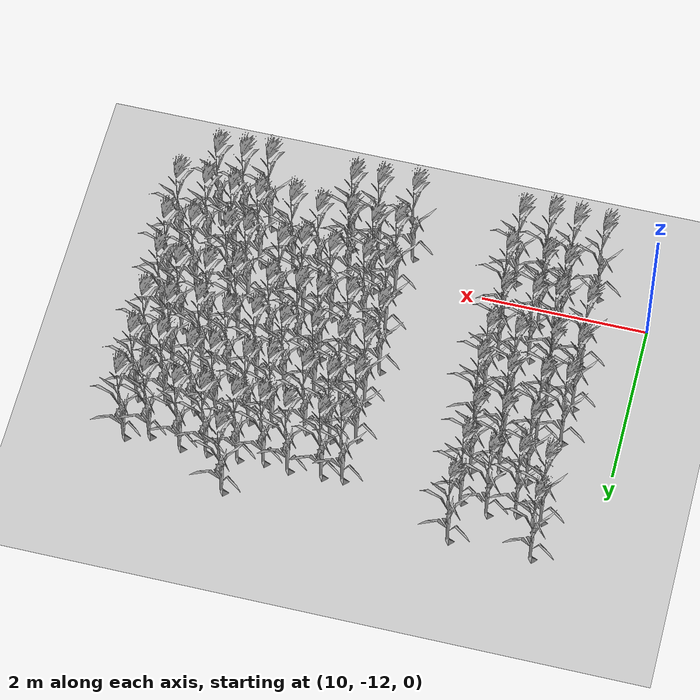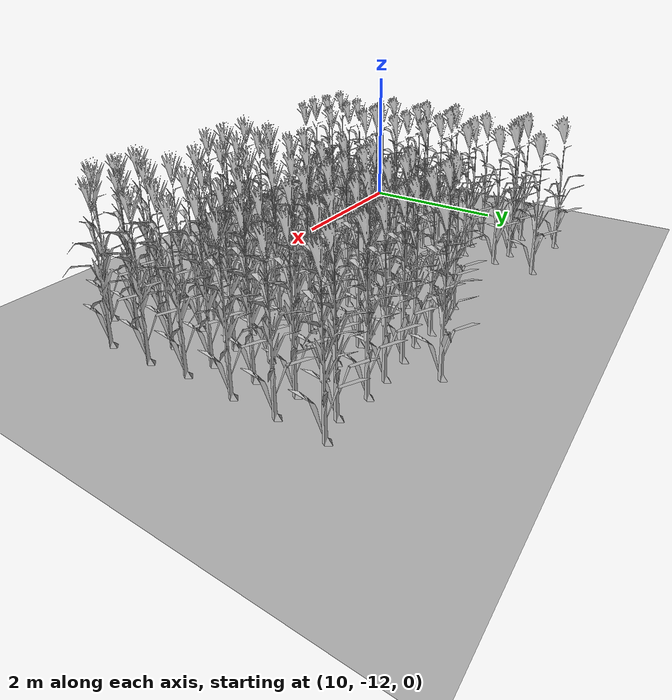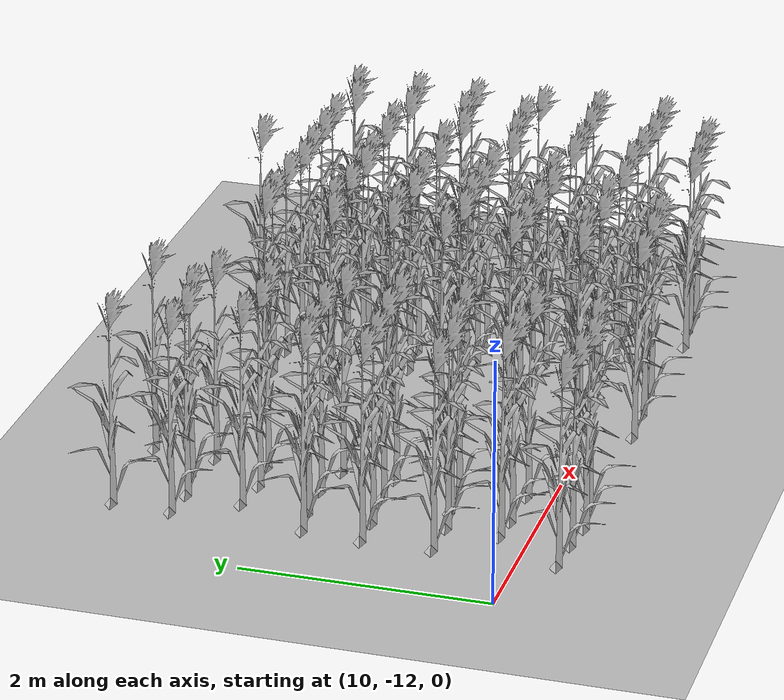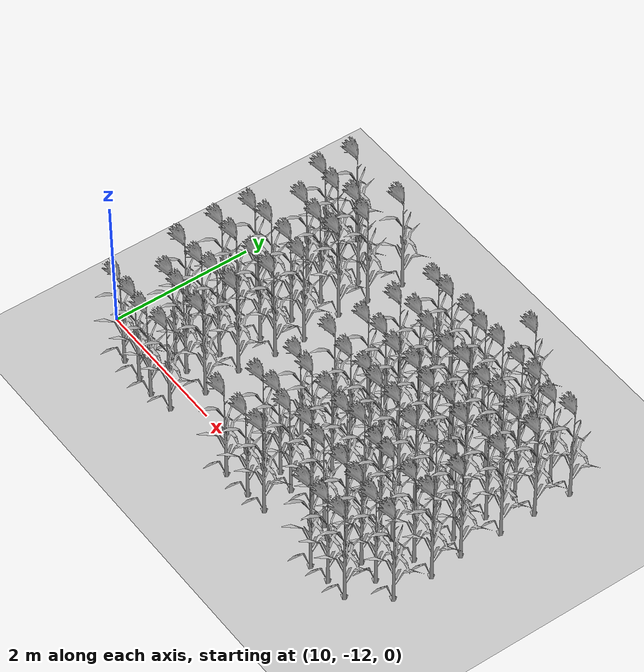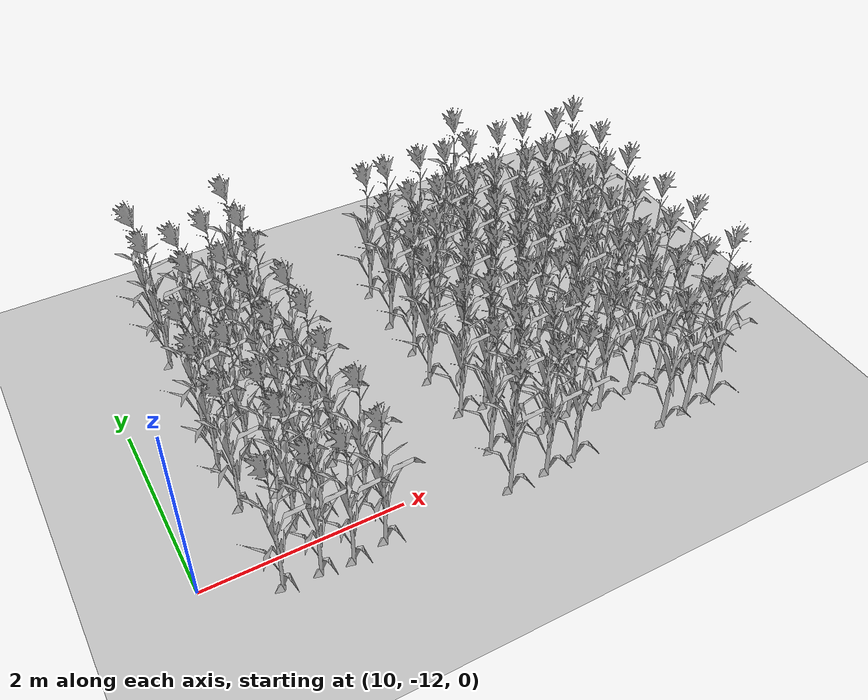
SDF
<sdf version="1.7">
 <world name="farmland_world">
  <model name="ground_plane">
   <static>1</static>
   <link name="link">
    <collision name="collision">
     <geometry><plane><normal>0 0 1</normal><size>40.0 40.0</size></plane></geometry>
     <surface><friction><ode><mu>100</mu><mu2>50</mu2></ode></friction></surface>
    </collision>
    <visual name="visual">
     <cast_shadows>0</cast_shadows>
     <geometry><plane><normal>0 0 1</normal><size>40.0 40.0</size></plane></geometry>
     <material>
      <script><uri>file://media/materials/scripts/gazebo.material</uri><name>Gazebo/Grey</name></script>
     </material>
    </visual>
   </link>
  </model>
  <model name="tree_3_1276">
   <static>1</static>
   <link name="link">
    <collision name="collision">
     <geometry><mesh><uri>model://Corn_low_poly/corn.obj</uri><scale>1 1 1</scale></mesh></geometry>
     <surface><friction><ode><mu>100</mu><mu2>50</mu2></ode></friction></surface>
    </collision>
    <visual name="visual">
     <geometry><mesh><uri>model://Corn_low_poly/corn.obj</uri><scale>1 1 1</scale></mesh></geometry>
    </visual>
   </link>
   <pose>10.712590287546128 -8.721554677420578 0 0 0 0</pose>
  </model>
  <model name="tree_3_1277">
   <static>1</static>
   <link name="link">
    <collision name="collision">
     <geometry><mesh><uri>model://Corn_low_poly/corn.obj</uri><scale>1 1 1</scale></mesh></geometry>
     <surface><friction><ode><mu>100</mu><mu2>50</mu2></ode></friction></surface>
    </collision>
    <visual name="visual">
     <geometry><mesh><uri>model://Corn_low_poly/corn.obj</uri><scale>1 1 1</scale></mesh></geometry>
    </visual>
   </link>
   <pose>10.697137242937291 -9.208723765863569 0 0 0 0</pose>
  </model>
  <model name="tree_3_1279">
   <static>1</static>
   <link name="link">
    <collision name="collision">
     <geometry><mesh><uri>model://Corn_low_poly/corn.obj</uri><scale>1 1 1</scale></mesh></geometry>
     <surface><friction><ode><mu>100</mu><mu2>50</mu2></ode></friction></surface>
    </collision>
    <visual name="visual">
     <geometry><mesh><uri>model://Corn_low_poly/corn.obj</uri><scale>1 1 1</scale></mesh></geometry>
    </visual>
   </link>
   <pose>10.68900913346405 -10.279654369193016 0 0 0 0</pose>
  </model>
  <model name="tree_3_1280">
   <static>1</static>
   <link name="link">
    <collision name="collision">
     <geometry><mesh><uri>model://Corn_low_poly/corn.obj</uri><scale>1 1 1</scale></mesh></geometry>
     <surface><friction><ode><mu>100</mu><mu2>50</mu2></ode></friction></surface>
    </collision>
    <visual name="visual">
     <geometry><mesh><uri>model://Corn_low_poly/corn.obj</uri><scale>1 1 1</scale></mesh></geometry>
    </visual>
   </link>
   <pose>10.65553380559151 -10.760929494632325 0 0 0 0</pose>
  </model>
  <model name="tree_3_1281">
   <static>1</static>
   <link name="link">
    <collision name="collision">
     <geometry><mesh><uri>model://Corn_low_poly/corn.obj</uri><scale>1 1 1</scale></mesh></geometry>
     <surface><friction><ode><mu>100</mu><mu2>50</mu2></ode></friction></surface>
    </collision>
    <visual name="visual">
     <geometry><mesh><uri>model://Corn_low_poly/corn.obj</uri><scale>1 1 1</scale></mesh></geometry>
    </visual>
   </link>
   <pose>10.666757583871274 -11.323173614422497 0 0 0 0</pose>
  </model>
  <model name="tree_3_1283">
   <static>1</static>
   <link name="link">
    <collision name="collision">
     <geometry><mesh><uri>model://Corn_low_poly/corn.obj</uri><scale>1 1 1</scale></mesh></geometry>
     <surface><friction><ode><mu>100</mu><mu2>50</mu2></ode></friction></surface>
    </collision>
    <visual name="visual">
     <geometry><mesh><uri>model://Corn_low_poly/corn.obj</uri><scale>1 1 1</scale></mesh></geometry>
    </visual>
   </link>
   <pose>10.683725073658634 -12.299409655871067 0 0 0 0</pose>
  </model>
  <model name="tree_3_1303">
   <static>1</static>
   <link name="link">
    <collision name="collision">
     <geometry><mesh><uri>model://Corn_low_poly/corn.obj</uri><scale>1 1 1</scale></mesh></geometry>
     <surface><friction><ode><mu>100</mu><mu2>50</mu2></ode></friction></surface>
    </collision>
    <visual name="visual">
     <geometry><mesh><uri>model://Corn_low_poly/corn.obj</uri><scale>1 1 1</scale></mesh></geometry>
    </visual>
   </link>
   <pose>10.999890956080558 -9.232882645473651 0 0 0 0</pose>
  </model>
  <model name="tree_3_1304">
   <static>1</static>
   <link name="link">
    <collision name="collision">
     <geometry><mesh><uri>model://Corn_low_poly/corn.obj</uri><scale>1 1 1</scale></mesh></geometry>
     <surface><friction><ode><mu>100</mu><mu2>50</mu2></ode></friction></surface>
    </collision>
    <visual name="visual">
     <geometry><mesh><uri>model://Corn_low_poly/corn.obj</uri><scale>1 1 1</scale></mesh></geometry>
    </visual>
   </link>
   <pose>10.968580055157117 -9.692099359160068 0 0 0 0</pose>
  </model>
  <model name="tree_3_1305">
   <static>1</static>
   <link name="link">
    <collision name="collision">
     <geometry><mesh><uri>model://Corn_low_poly/corn.obj</uri><scale>1 1 1</scale></mesh></geometry>
     <surface><friction><ode><mu>100</mu><mu2>50</mu2></ode></friction></surface>
    </collision>
    <visual name="visual">
     <geometry><mesh><uri>model://Corn_low_poly/corn.obj</uri><scale>1 1 1</scale></mesh></geometry>
    </visual>
   </link>
   <pose>10.972463463315165 -10.2334536938371 0 0 0 0</pose>
  </model>
  <model name="tree_3_1306">
   <static>1</static>
   <link name="link">
    <collision name="collision">
     <geometry><mesh><uri>model://Corn_low_poly/corn.obj</uri><scale>1 1 1</scale></mesh></geometry>
     <surface><friction><ode><mu>100</mu><mu2>50</mu2></ode></friction></surface>
    </collision>
    <visual name="visual">
     <geometry><mesh><uri>model://Corn_low_poly/corn.obj</uri><scale>1 1 1</scale></mesh></geometry>
    </visual>
   </link>
   <pose>10.960484214269439 -10.754221765414966 0 0 0 0</pose>
  </model>
  <model name="tree_3_1307">
   <static>1</static>
   <link name="link">
    <collision name="collision">
     <geometry><mesh><uri>model://Corn_low_poly/corn.obj</uri><scale>1 1 1</scale></mesh></geometry>
     <surface><friction><ode><mu>100</mu><mu2>50</mu2></ode></friction></surface>
    </collision>
    <visual name="visual">
     <geometry><mesh><uri>model://Corn_low_poly/corn.obj</uri><scale>1 1 1</scale></mesh></geometry>
    </visual>
   </link>
   <pose>11.03778016681984 -11.329312798935172 0 0 0 0</pose>
  </model>
  <model name="tree_3_1308">
   <static>1</static>
   <link name="link">
    <collision name="collision">
     <geometry><mesh><uri>model://Corn_low_poly/corn.obj</uri><scale>1 1 1</scale></mesh></geometry>
     <surface><friction><ode><mu>100</mu><mu2>50</mu2></ode></friction></surface>
    </collision>
    <visual name="visual">
     <geometry><mesh><uri>model://Corn_low_poly/corn.obj</uri><scale>1 1 1</scale></mesh></geometry>
    </visual>
   </link>
   <pose>11.021519494524423 -11.758095381481226 0 0 0 0</pose>
  </model>
  <model name="tree_3_1309">
   <static>1</static>
   <link name="link">
    <collision name="collision">
     <geometry><mesh><uri>model://Corn_low_poly/corn.obj</uri><scale>1 1 1</scale></mesh></geometry>
     <surface><friction><ode><mu>100</mu><mu2>50</mu2></ode></friction></surface>
    </collision>
    <visual name="visual">
     <geometry><mesh><uri>model://Corn_low_poly/corn.obj</uri><scale>1 1 1</scale></mesh></geometry>
    </visual>
   </link>
   <pose>11.034552466023404 -12.315293473117126 0 0 0 0</pose>
  </model>
  <model name="tree_3_1329">
   <static>1</static>
   <link name="link">
    <collision name="collision">
     <geometry><mesh><uri>model://Corn_low_poly/corn.obj</uri><scale>1 1 1</scale></mesh></geometry>
     <surface><friction><ode><mu>100</mu><mu2>50</mu2></ode></friction></surface>
    </collision>
    <visual name="visual">
     <geometry><mesh><uri>model://Corn_low_poly/corn.obj</uri><scale>1 1 1</scale></mesh></geometry>
    </visual>
   </link>
   <pose>11.327159757321947 -9.155533036479083 0 0 0 0</pose>
  </model>
  <model name="tree_3_1330">
   <static>1</static>
   <link name="link">
    <collision name="collision">
     <geometry><mesh><uri>model://Corn_low_poly/corn.obj</uri><scale>1 1 1</scale></mesh></geometry>
     <surface><friction><ode><mu>100</mu><mu2>50</mu2></ode></friction></surface>
    </collision>
    <visual name="visual">
     <geometry><mesh><uri>model://Corn_low_poly/corn.obj</uri><scale>1 1 1</scale></mesh></geometry>
    </visual>
   </link>
   <pose>11.306016690328173 -9.726875922193582 0 0 0 0</pose>
  </model>
  <model name="tree_3_1331">
   <static>1</static>
   <link name="link">
    <collision name="collision">
     <geometry><mesh><uri>model://Corn_low_poly/corn.obj</uri><scale>1 1 1</scale></mesh></geometry>
     <surface><friction><ode><mu>100</mu><mu2>50</mu2></ode></friction></surface>
    </collision>
    <visual name="visual">
     <geometry><mesh><uri>model://Corn_low_poly/corn.obj</uri><scale>1 1 1</scale></mesh></geometry>
    </visual>
   </link>
   <pose>11.352444781736523 -10.214068037391959 0 0 0 0</pose>
  </model>
  <model name="tree_3_1332">
   <static>1</static>
   <link name="link">
    <collision name="collision">
     <geometry><mesh><uri>model://Corn_low_poly/corn.obj</uri><scale>1 1 1</scale></mesh></geometry>
     <surface><friction><ode><mu>100</mu><mu2>50</mu2></ode></friction></surface>
    </collision>
    <visual name="visual">
     <geometry><mesh><uri>model://Corn_low_poly/corn.obj</uri><scale>1 1 1</scale></mesh></geometry>
    </visual>
   </link>
   <pose>11.375541025906942 -10.714460345486712 0 0 0 0</pose>
  </model>
  <model name="tree_3_1333">
   <static>1</static>
   <link name="link">
    <collision name="collision">
     <geometry><mesh><uri>model://Corn_low_poly/corn.obj</uri><scale>1 1 1</scale></mesh></geometry>
     <surface><friction><ode><mu>100</mu><mu2>50</mu2></ode></friction></surface>
    </collision>
    <visual name="visual">
     <geometry><mesh><uri>model://Corn_low_poly/corn.obj</uri><scale>1 1 1</scale></mesh></geometry>
    </visual>
   </link>
   <pose>11.295530359236745 -11.281155596338511 0 0 0 0</pose>
  </model>
  <model name="tree_3_1334">
   <static>1</static>
   <link name="link">
    <collision name="collision">
     <geometry><mesh><uri>model://Corn_low_poly/corn.obj</uri><scale>1 1 1</scale></mesh></geometry>
     <surface><friction><ode><mu>100</mu><mu2>50</mu2></ode></friction></surface>
    </collision>
    <visual name="visual">
     <geometry><mesh><uri>model://Corn_low_poly/corn.obj</uri><scale>1 1 1</scale></mesh></geometry>
    </visual>
   </link>
   <pose>11.284010358071075 -11.773554500819937 0 0 0 0</pose>
  </model>
  <model name="tree_3_1335">
   <static>1</static>
   <link name="link">
    <collision name="collision">
     <geometry><mesh><uri>model://Corn_low_poly/corn.obj</uri><scale>1 1 1</scale></mesh></geometry>
     <surface><friction><ode><mu>100</mu><mu2>50</mu2></ode></friction></surface>
    </collision>
    <visual name="visual">
     <geometry><mesh><uri>model://Corn_low_poly/corn.obj</uri><scale>1 1 1</scale></mesh></geometry>
    </visual>
   </link>
   <pose>11.333836860167402 -12.344751836967225 0 0 0 0</pose>
  </model>
  <model name="tree_3_1354">
   <static>1</static>
   <link name="link">
    <collision name="collision">
     <geometry><mesh><uri>model://Corn_low_poly/corn.obj</uri><scale>1 1 1</scale></mesh></geometry>
     <surface><friction><ode><mu>100</mu><mu2>50</mu2></ode></friction></surface>
    </collision>
    <visual name="visual">
     <geometry><mesh><uri>model://Corn_low_poly/corn.obj</uri><scale>1 1 1</scale></mesh></geometry>
    </visual>
   </link>
   <pose>11.68559854655214 -8.723766910554925 0 0 0 0</pose>
  </model>
  <model name="tree_3_1355">
   <static>1</static>
   <link name="link">
    <collision name="collision">
     <geometry><mesh><uri>model://Corn_low_poly/corn.obj</uri><scale>1 1 1</scale></mesh></geometry>
     <surface><friction><ode><mu>100</mu><mu2>50</mu2></ode></friction></surface>
    </collision>
    <visual name="visual">
     <geometry><mesh><uri>model://Corn_low_poly/corn.obj</uri><scale>1 1 1</scale></mesh></geometry>
    </visual>
   </link>
   <pose>11.651948153793127 -9.247264969704112 0 0 0 0</pose>
  </model>
  <model name="tree_3_1356">
   <static>1</static>
   <link name="link">
    <collision name="collision">
     <geometry><mesh><uri>model://Corn_low_poly/corn.obj</uri><scale>1 1 1</scale></mesh></geometry>
     <surface><friction><ode><mu>100</mu><mu2>50</mu2></ode></friction></surface>
    </collision>
    <visual name="visual">
     <geometry><mesh><uri>model://Corn_low_poly/corn.obj</uri><scale>1 1 1</scale></mesh></geometry>
    </visual>
   </link>
   <pose>11.631078623062175 -9.685410377410898 0 0 0 0</pose>
  </model>
  <model name="tree_3_1357">
   <static>1</static>
   <link name="link">
    <collision name="collision">
     <geometry><mesh><uri>model://Corn_low_poly/corn.obj</uri><scale>1 1 1</scale></mesh></geometry>
     <surface><friction><ode><mu>100</mu><mu2>50</mu2></ode></friction></surface>
    </collision>
    <visual name="visual">
     <geometry><mesh><uri>model://Corn_low_poly/corn.obj</uri><scale>1 1 1</scale></mesh></geometry>
    </visual>
   </link>
   <pose>11.711934252888803 -10.279370815911975 0 0 0 0</pose>
  </model>
  <model name="tree_3_1358">
   <static>1</static>
   <link name="link">
    <collision name="collision">
     <geometry><mesh><uri>model://Corn_low_poly/corn.obj</uri><scale>1 1 1</scale></mesh></geometry>
     <surface><friction><ode><mu>100</mu><mu2>50</mu2></ode></friction></surface>
    </collision>
    <visual name="visual">
     <geometry><mesh><uri>model://Corn_low_poly/corn.obj</uri><scale>1 1 1</scale></mesh></geometry>
    </visual>
   </link>
   <pose>11.703943133647876 -10.718392594703385 0 0 0 0</pose>
  </model>
  <model name="tree_3_1359">
   <static>1</static>
   <link name="link">
    <collision name="collision">
     <geometry><mesh><uri>model://Corn_low_poly/corn.obj</uri><scale>1 1 1</scale></mesh></geometry>
     <surface><friction><ode><mu>100</mu><mu2>50</mu2></ode></friction></surface>
    </collision>
    <visual name="visual">
     <geometry><mesh><uri>model://Corn_low_poly/corn.obj</uri><scale>1 1 1</scale></mesh></geometry>
    </visual>
   </link>
   <pose>11.655709140777311 -11.243517528000766 0 0 0 0</pose>
  </model>
  <model name="tree_3_1360">
   <static>1</static>
   <link name="link">
    <collision name="collision">
     <geometry><mesh><uri>model://Corn_low_poly/corn.obj</uri><scale>1 1 1</scale></mesh></geometry>
     <surface><friction><ode><mu>100</mu><mu2>50</mu2></ode></friction></surface>
    </collision>
    <visual name="visual">
     <geometry><mesh><uri>model://Corn_low_poly/corn.obj</uri><scale>1 1 1</scale></mesh></geometry>
    </visual>
   </link>
   <pose>11.715177458582309 -11.7847555163473 0 0 0 0</pose>
  </model>
  <model name="tree_3_1361">
   <static>1</static>
   <link name="link">
    <collision name="collision">
     <geometry><mesh><uri>model://Corn_low_poly/corn.obj</uri><scale>1 1 1</scale></mesh></geometry>
     <surface><friction><ode><mu>100</mu><mu2>50</mu2></ode></friction></surface>
    </collision>
    <visual name="visual">
     <geometry><mesh><uri>model://Corn_low_poly/corn.obj</uri><scale>1 1 1</scale></mesh></geometry>
    </visual>
   </link>
   <pose>11.674417851053787 -12.286557391233448 0 0 0 0</pose>
  </model>
  <model name="tree_3_1381">
   <static>1</static>
   <link name="link">
    <collision name="collision">
     <geometry><mesh><uri>model://Corn_low_poly/corn.obj</uri><scale>1 1 1</scale></mesh></geometry>
     <surface><friction><ode><mu>100</mu><mu2>50</mu2></ode></friction></surface>
    </collision>
    <visual name="visual">
     <geometry><mesh><uri>model://Corn_low_poly/corn.obj</uri><scale>1 1 1</scale></mesh></geometry>
    </visual>
   </link>
   <pose>13.04460544598058 -9.196783009207037 0 0 0 0</pose>
  </model>
  <model name="tree_3_1382">
   <static>1</static>
   <link name="link">
    <collision name="collision">
     <geometry><mesh><uri>model://Corn_low_poly/corn.obj</uri><scale>1 1 1</scale></mesh></geometry>
     <surface><friction><ode><mu>100</mu><mu2>50</mu2></ode></friction></surface>
    </collision>
    <visual name="visual">
     <geometry><mesh><uri>model://Corn_low_poly/corn.obj</uri><scale>1 1 1</scale></mesh></geometry>
    </visual>
   </link>
   <pose>13.016220259852426 -9.763549217176125 0 0 0 0</pose>
  </model>
  <model name="tree_3_1383">
   <static>1</static>
   <link name="link">
    <collision name="collision">
     <geometry><mesh><uri>model://Corn_low_poly/corn.obj</uri><scale>1 1 1</scale></mesh></geometry>
     <surface><friction><ode><mu>100</mu><mu2>50</mu2></ode></friction></surface>
    </collision>
    <visual name="visual">
     <geometry><mesh><uri>model://Corn_low_poly/corn.obj</uri><scale>1 1 1</scale></mesh></geometry>
    </visual>
   </link>
   <pose>13.036622315786346 -10.258207844460603 0 0 0 0</pose>
  </model>
  <model name="tree_3_1384">
   <static>1</static>
   <link name="link">
    <collision name="collision">
     <geometry><mesh><uri>model://Corn_low_poly/corn.obj</uri><scale>1 1 1</scale></mesh></geometry>
     <surface><friction><ode><mu>100</mu><mu2>50</mu2></ode></friction></surface>
    </collision>
    <visual name="visual">
     <geometry><mesh><uri>model://Corn_low_poly/corn.obj</uri><scale>1 1 1</scale></mesh></geometry>
    </visual>
   </link>
   <pose>12.970077758342432 -10.713155203588432 0 0 0 0</pose>
  </model>
  <model name="tree_3_1385">
   <static>1</static>
   <link name="link">
    <collision name="collision">
     <geometry><mesh><uri>model://Corn_low_poly/corn.obj</uri><scale>1 1 1</scale></mesh></geometry>
     <surface><friction><ode><mu>100</mu><mu2>50</mu2></ode></friction></surface>
    </collision>
    <visual name="visual">
     <geometry><mesh><uri>model://Corn_low_poly/corn.obj</uri><scale>1 1 1</scale></mesh></geometry>
    </visual>
   </link>
   <pose>13.027903516461809 -11.265421480245923 0 0 0 0</pose>
  </model>
  <model name="tree_3_1386">
   <static>1</static>
   <link name="link">
    <collision name="collision">
     <geometry><mesh><uri>model://Corn_low_poly/corn.obj</uri><scale>1 1 1</scale></mesh></geometry>
     <surface><friction><ode><mu>100</mu><mu2>50</mu2></ode></friction></surface>
    </collision>
    <visual name="visual">
     <geometry><mesh><uri>model://Corn_low_poly/corn.obj</uri><scale>1 1 1</scale></mesh></geometry>
    </visual>
   </link>
   <pose>13.041020701210245 -11.826049121173435 0 0 0 0</pose>
  </model>
  <model name="tree_3_1387">
   <static>1</static>
   <link name="link">
    <collision name="collision">
     <geometry><mesh><uri>model://Corn_low_poly/corn.obj</uri><scale>1 1 1</scale></mesh></geometry>
     <surface><friction><ode><mu>100</mu><mu2>50</mu2></ode></friction></surface>
    </collision>
    <visual name="visual">
     <geometry><mesh><uri>model://Corn_low_poly/corn.obj</uri><scale>1 1 1</scale></mesh></geometry>
    </visual>
   </link>
   <pose>12.950458142697228 -12.32986829313126 0 0 0 0</pose>
  </model>
  <model name="tree_3_1407">
   <static>1</static>
   <link name="link">
    <collision name="collision">
     <geometry><mesh><uri>model://Corn_low_poly/corn.obj</uri><scale>1 1 1</scale></mesh></geometry>
     <surface><friction><ode><mu>100</mu><mu2>50</mu2></ode></friction></surface>
    </collision>
    <visual name="visual">
     <geometry><mesh><uri>model://Corn_low_poly/corn.obj</uri><scale>1 1 1</scale></mesh></geometry>
    </visual>
   </link>
   <pose>13.292341979542202 -9.182412231958166 0 0 0 0</pose>
  </model>
  <model name="tree_3_1408">
   <static>1</static>
   <link name="link">
    <collision name="collision">
     <geometry><mesh><uri>model://Corn_low_poly/corn.obj</uri><scale>1 1 1</scale></mesh></geometry>
     <surface><friction><ode><mu>100</mu><mu2>50</mu2></ode></friction></surface>
    </collision>
    <visual name="visual">
     <geometry><mesh><uri>model://Corn_low_poly/corn.obj</uri><scale>1 1 1</scale></mesh></geometry>
    </visual>
   </link>
   <pose>13.31378360115225 -9.678862156522218 0 0 0 0</pose>
  </model>
  <model name="tree_3_1409">
   <static>1</static>
   <link name="link">
    <collision name="collision">
     <geometry><mesh><uri>model://Corn_low_poly/corn.obj</uri><scale>1 1 1</scale></mesh></geometry>
     <surface><friction><ode><mu>100</mu><mu2>50</mu2></ode></friction></surface>
    </collision>
    <visual name="visual">
     <geometry><mesh><uri>model://Corn_low_poly/corn.obj</uri><scale>1 1 1</scale></mesh></geometry>
    </visual>
   </link>
   <pose>13.320785563553033 -10.207418677915783 0 0 0 0</pose>
  </model>
  <model name="tree_3_1410">
   <static>1</static>
   <link name="link">
    <collision name="collision">
     <geometry><mesh><uri>model://Corn_low_poly/corn.obj</uri><scale>1 1 1</scale></mesh></geometry>
     <surface><friction><ode><mu>100</mu><mu2>50</mu2></ode></friction></surface>
    </collision>
    <visual name="visual">
     <geometry><mesh><uri>model://Corn_low_poly/corn.obj</uri><scale>1 1 1</scale></mesh></geometry>
    </visual>
   </link>
   <pose>13.358202429899073 -10.75893892284424 0 0 0 0</pose>
  </model>
  <model name="tree_3_1411">
   <static>1</static>
   <link name="link">
    <collision name="collision">
     <geometry><mesh><uri>model://Corn_low_poly/corn.obj</uri><scale>1 1 1</scale></mesh></geometry>
     <surface><friction><ode><mu>100</mu><mu2>50</mu2></ode></friction></surface>
    </collision>
    <visual name="visual">
     <geometry><mesh><uri>model://Corn_low_poly/corn.obj</uri><scale>1 1 1</scale></mesh></geometry>
    </visual>
   </link>
   <pose>13.294586403244196 -11.287380652831231 0 0 0 0</pose>
  </model>
  <model name="tree_3_1412">
   <static>1</static>
   <link name="link">
    <collision name="collision">
     <geometry><mesh><uri>model://Corn_low_poly/corn.obj</uri><scale>1 1 1</scale></mesh></geometry>
     <surface><friction><ode><mu>100</mu><mu2>50</mu2></ode></friction></surface>
    </collision>
    <visual name="visual">
     <geometry><mesh><uri>model://Corn_low_poly/corn.obj</uri><scale>1 1 1</scale></mesh></geometry>
    </visual>
   </link>
   <pose>13.308834849753623 -11.781612970474937 0 0 0 0</pose>
  </model>
  <model name="tree_3_1413">
   <static>1</static>
   <link name="link">
    <collision name="collision">
     <geometry><mesh><uri>model://Corn_low_poly/corn.obj</uri><scale>1 1 1</scale></mesh></geometry>
     <surface><friction><ode><mu>100</mu><mu2>50</mu2></ode></friction></surface>
    </collision>
    <visual name="visual">
     <geometry><mesh><uri>model://Corn_low_poly/corn.obj</uri><scale>1 1 1</scale></mesh></geometry>
    </visual>
   </link>
   <pose>13.366535540383728 -12.307527326641113 0 0 0 0</pose>
  </model>
  <model name="tree_3_1433">
   <static>1</static>
   <link name="link">
    <collision name="collision">
     <geometry><mesh><uri>model://Corn_low_poly/corn.obj</uri><scale>1 1 1</scale></mesh></geometry>
     <surface><friction><ode><mu>100</mu><mu2>50</mu2></ode></friction></surface>
    </collision>
    <visual name="visual">
     <geometry><mesh><uri>model://Corn_low_poly/corn.obj</uri><scale>1 1 1</scale></mesh></geometry>
    </visual>
   </link>
   <pose>13.69090858789093 -9.170617408146885 0 0 0 0</pose>
  </model>
  <model name="tree_3_1434">
   <static>1</static>
   <link name="link">
    <collision name="collision">
     <geometry><mesh><uri>model://Corn_low_poly/corn.obj</uri><scale>1 1 1</scale></mesh></geometry>
     <surface><friction><ode><mu>100</mu><mu2>50</mu2></ode></friction></surface>
    </collision>
    <visual name="visual">
     <geometry><mesh><uri>model://Corn_low_poly/corn.obj</uri><scale>1 1 1</scale></mesh></geometry>
    </visual>
   </link>
   <pose>13.622882243427114 -9.72141309300333 0 0 0 0</pose>
  </model>
  <model name="tree_3_1435">
   <static>1</static>
   <link name="link">
    <collision name="collision">
     <geometry><mesh><uri>model://Corn_low_poly/corn.obj</uri><scale>1 1 1</scale></mesh></geometry>
     <surface><friction><ode><mu>100</mu><mu2>50</mu2></ode></friction></surface>
    </collision>
    <visual name="visual">
     <geometry><mesh><uri>model://Corn_low_poly/corn.obj</uri><scale>1 1 1</scale></mesh></geometry>
    </visual>
   </link>
   <pose>13.6436302798911 -10.252011327139488 0 0 0 0</pose>
  </model>
  <model name="tree_3_1436">
   <static>1</static>
   <link name="link">
    <collision name="collision">
     <geometry><mesh><uri>model://Corn_low_poly/corn.obj</uri><scale>1 1 1</scale></mesh></geometry>
     <surface><friction><ode><mu>100</mu><mu2>50</mu2></ode></friction></surface>
    </collision>
    <visual name="visual">
     <geometry><mesh><uri>model://Corn_low_poly/corn.obj</uri><scale>1 1 1</scale></mesh></geometry>
    </visual>
   </link>
   <pose>13.696759954867215 -10.72146689375907 0 0 0 0</pose>
  </model>
  <model name="tree_3_1437">
   <static>1</static>
   <link name="link">
    <collision name="collision">
     <geometry><mesh><uri>model://Corn_low_poly/corn.obj</uri><scale>1 1 1</scale></mesh></geometry>
     <surface><friction><ode><mu>100</mu><mu2>50</mu2></ode></friction></surface>
    </collision>
    <visual name="visual">
     <geometry><mesh><uri>model://Corn_low_poly/corn.obj</uri><scale>1 1 1</scale></mesh></geometry>
    </visual>
   </link>
   <pose>13.695088106350406 -11.28333210555944 0 0 0 0</pose>
  </model>
  <model name="tree_3_1438">
   <static>1</static>
   <link name="link">
    <collision name="collision">
     <geometry><mesh><uri>model://Corn_low_poly/corn.obj</uri><scale>1 1 1</scale></mesh></geometry>
     <surface><friction><ode><mu>100</mu><mu2>50</mu2></ode></friction></surface>
    </collision>
    <visual name="visual">
     <geometry><mesh><uri>model://Corn_low_poly/corn.obj</uri><scale>1 1 1</scale></mesh></geometry>
    </visual>
   </link>
   <pose>13.620140385414444 -11.846361591792784 0 0 0 0</pose>
  </model>
  <model name="tree_3_1439">
   <static>1</static>
   <link name="link">
    <collision name="collision">
     <geometry><mesh><uri>model://Corn_low_poly/corn.obj</uri><scale>1 1 1</scale></mesh></geometry>
     <surface><friction><ode><mu>100</mu><mu2>50</mu2></ode></friction></surface>
    </collision>
    <visual name="visual">
     <geometry><mesh><uri>model://Corn_low_poly/corn.obj</uri><scale>1 1 1</scale></mesh></geometry>
    </visual>
   </link>
   <pose>13.685684735365859 -12.290184283475567 0 0 0 0</pose>
  </model>
  <model name="tree_3_1459">
   <static>1</static>
   <link name="link">
    <collision name="collision">
     <geometry><mesh><uri>model://Corn_low_poly/corn.obj</uri><scale>1 1 1</scale></mesh></geometry>
     <surface><friction><ode><mu>100</mu><mu2>50</mu2></ode></friction></surface>
    </collision>
    <visual name="visual">
     <geometry><mesh><uri>model://Corn_low_poly/corn.obj</uri><scale>1 1 1</scale></mesh></geometry>
    </visual>
   </link>
   <pose>13.98851218070122 -9.202939222064174 0 0 0 0</pose>
  </model>
  <model name="tree_3_1460">
   <static>1</static>
   <link name="link">
    <collision name="collision">
     <geometry><mesh><uri>model://Corn_low_poly/corn.obj</uri><scale>1 1 1</scale></mesh></geometry>
     <surface><friction><ode><mu>100</mu><mu2>50</mu2></ode></friction></surface>
    </collision>
    <visual name="visual">
     <geometry><mesh><uri>model://Corn_low_poly/corn.obj</uri><scale>1 1 1</scale></mesh></geometry>
    </visual>
   </link>
   <pose>14.021509907150545 -9.731008946504415 0 0 0 0</pose>
  </model>
  <model name="tree_3_1461">
   <static>1</static>
   <link name="link">
    <collision name="collision">
     <geometry><mesh><uri>model://Corn_low_poly/corn.obj</uri><scale>1 1 1</scale></mesh></geometry>
     <surface><friction><ode><mu>100</mu><mu2>50</mu2></ode></friction></surface>
    </collision>
    <visual name="visual">
     <geometry><mesh><uri>model://Corn_low_poly/corn.obj</uri><scale>1 1 1</scale></mesh></geometry>
    </visual>
   </link>
   <pose>13.998929733279999 -10.220689123589697 0 0 0 0</pose>
  </model>
  <model name="tree_3_1462">
   <static>1</static>
   <link name="link">
    <collision name="collision">
     <geometry><mesh><uri>model://Corn_low_poly/corn.obj</uri><scale>1 1 1</scale></mesh></geometry>
     <surface><friction><ode><mu>100</mu><mu2>50</mu2></ode></friction></surface>
    </collision>
    <visual name="visual">
     <geometry><mesh><uri>model://Corn_low_poly/corn.obj</uri><scale>1 1 1</scale></mesh></geometry>
    </visual>
   </link>
   <pose>13.952148518201128 -10.743567659753172 0 0 0 0</pose>
  </model>
  <model name="tree_3_1463">
   <static>1</static>
   <link name="link">
    <collision name="collision">
     <geometry><mesh><uri>model://Corn_low_poly/corn.obj</uri><scale>1 1 1</scale></mesh></geometry>
     <surface><friction><ode><mu>100</mu><mu2>50</mu2></ode></friction></surface>
    </collision>
    <visual name="visual">
     <geometry><mesh><uri>model://Corn_low_poly/corn.obj</uri><scale>1 1 1</scale></mesh></geometry>
    </visual>
   </link>
   <pose>14.04465596450332 -11.310815531529054 0 0 0 0</pose>
  </model>
  <model name="tree_3_1464">
   <static>1</static>
   <link name="link">
    <collision name="collision">
     <geometry><mesh><uri>model://Corn_low_poly/corn.obj</uri><scale>1 1 1</scale></mesh></geometry>
     <surface><friction><ode><mu>100</mu><mu2>50</mu2></ode></friction></surface>
    </collision>
    <visual name="visual">
     <geometry><mesh><uri>model://Corn_low_poly/corn.obj</uri><scale>1 1 1</scale></mesh></geometry>
    </visual>
   </link>
   <pose>13.968498317758307 -11.781707038024024 0 0 0 0</pose>
  </model>
  <model name="tree_3_1484">
   <static>1</static>
   <link name="link">
    <collision name="collision">
     <geometry><mesh><uri>model://Corn_low_poly/corn.obj</uri><scale>1 1 1</scale></mesh></geometry>
     <surface><friction><ode><mu>100</mu><mu2>50</mu2></ode></friction></surface>
    </collision>
    <visual name="visual">
     <geometry><mesh><uri>model://Corn_low_poly/corn.obj</uri><scale>1 1 1</scale></mesh></geometry>
    </visual>
   </link>
   <pose>14.36086853172298 -8.72563432513868 0 0 0 0</pose>
  </model>
  <model name="tree_3_1485">
   <static>1</static>
   <link name="link">
    <collision name="collision">
     <geometry><mesh><uri>model://Corn_low_poly/corn.obj</uri><scale>1 1 1</scale></mesh></geometry>
     <surface><friction><ode><mu>100</mu><mu2>50</mu2></ode></friction></surface>
    </collision>
    <visual name="visual">
     <geometry><mesh><uri>model://Corn_low_poly/corn.obj</uri><scale>1 1 1</scale></mesh></geometry>
    </visual>
   </link>
   <pose>14.296051311957989 -9.17673922174886 0 0 0 0</pose>
  </model>
  <model name="tree_3_1486">
   <static>1</static>
   <link name="link">
    <collision name="collision">
     <geometry><mesh><uri>model://Corn_low_poly/corn.obj</uri><scale>1 1 1</scale></mesh></geometry>
     <surface><friction><ode><mu>100</mu><mu2>50</mu2></ode></friction></surface>
    </collision>
    <visual name="visual">
     <geometry><mesh><uri>model://Corn_low_poly/corn.obj</uri><scale>1 1 1</scale></mesh></geometry>
    </visual>
   </link>
   <pose>14.296709515331338 -9.690627105977187 0 0 0 0</pose>
  </model>
  <model name="tree_3_1487">
   <static>1</static>
   <link name="link">
    <collision name="collision">
     <geometry><mesh><uri>model://Corn_low_poly/corn.obj</uri><scale>1 1 1</scale></mesh></geometry>
     <surface><friction><ode><mu>100</mu><mu2>50</mu2></ode></friction></surface>
    </collision>
    <visual name="visual">
     <geometry><mesh><uri>model://Corn_low_poly/corn.obj</uri><scale>1 1 1</scale></mesh></geometry>
    </visual>
   </link>
   <pose>14.344602788398912 -10.270223502445566 0 0 0 0</pose>
  </model>
  <model name="tree_3_1488">
   <static>1</static>
   <link name="link">
    <collision name="collision">
     <geometry><mesh><uri>model://Corn_low_poly/corn.obj</uri><scale>1 1 1</scale></mesh></geometry>
     <surface><friction><ode><mu>100</mu><mu2>50</mu2></ode></friction></surface>
    </collision>
    <visual name="visual">
     <geometry><mesh><uri>model://Corn_low_poly/corn.obj</uri><scale>1 1 1</scale></mesh></geometry>
    </visual>
   </link>
   <pose>14.295171756265947 -10.73056202740176 0 0 0 0</pose>
  </model>
  <model name="tree_3_1489">
   <static>1</static>
   <link name="link">
    <collision name="collision">
     <geometry><mesh><uri>model://Corn_low_poly/corn.obj</uri><scale>1 1 1</scale></mesh></geometry>
     <surface><friction><ode><mu>100</mu><mu2>50</mu2></ode></friction></surface>
    </collision>
    <visual name="visual">
     <geometry><mesh><uri>model://Corn_low_poly/corn.obj</uri><scale>1 1 1</scale></mesh></geometry>
    </visual>
   </link>
   <pose>14.29570870906149 -11.241122137086155 0 0 0 0</pose>
  </model>
  <model name="tree_3_1490">
   <static>1</static>
   <link name="link">
    <collision name="collision">
     <geometry><mesh><uri>model://Corn_low_poly/corn.obj</uri><scale>1 1 1</scale></mesh></geometry>
     <surface><friction><ode><mu>100</mu><mu2>50</mu2></ode></friction></surface>
    </collision>
    <visual name="visual">
     <geometry><mesh><uri>model://Corn_low_poly/corn.obj</uri><scale>1 1 1</scale></mesh></geometry>
    </visual>
   </link>
   <pose>14.301131466868808 -11.842026981787848 0 0 0 0</pose>
  </model>
  <model name="tree_3_1511">
   <static>1</static>
   <link name="link">
    <collision name="collision">
     <geometry><mesh><uri>model://Corn_low_poly/corn.obj</uri><scale>1 1 1</scale></mesh></geometry>
     <surface><friction><ode><mu>100</mu><mu2>50</mu2></ode></friction></surface>
    </collision>
    <visual name="visual">
     <geometry><mesh><uri>model://Corn_low_poly/corn.obj</uri><scale>1 1 1</scale></mesh></geometry>
    </visual>
   </link>
   <pose>14.66677263026891 -9.166135869378174 0 0 0 0</pose>
  </model>
  <model name="tree_3_1512">
   <static>1</static>
   <link name="link">
    <collision name="collision">
     <geometry><mesh><uri>model://Corn_low_poly/corn.obj</uri><scale>1 1 1</scale></mesh></geometry>
     <surface><friction><ode><mu>100</mu><mu2>50</mu2></ode></friction></surface>
    </collision>
    <visual name="visual">
     <geometry><mesh><uri>model://Corn_low_poly/corn.obj</uri><scale>1 1 1</scale></mesh></geometry>
    </visual>
   </link>
   <pose>14.694104198255427 -9.70269922453448 0 0 0 0</pose>
  </model>
  <model name="tree_3_1513">
   <static>1</static>
   <link name="link">
    <collision name="collision">
     <geometry><mesh><uri>model://Corn_low_poly/corn.obj</uri><scale>1 1 1</scale></mesh></geometry>
     <surface><friction><ode><mu>100</mu><mu2>50</mu2></ode></friction></surface>
    </collision>
    <visual name="visual">
     <geometry><mesh><uri>model://Corn_low_poly/corn.obj</uri><scale>1 1 1</scale></mesh></geometry>
    </visual>
   </link>
   <pose>14.667062503216451 -10.20188607045161 0 0 0 0</pose>
  </model>
  <model name="tree_3_1514">
   <static>1</static>
   <link name="link">
    <collision name="collision">
     <geometry><mesh><uri>model://Corn_low_poly/corn.obj</uri><scale>1 1 1</scale></mesh></geometry>
     <surface><friction><ode><mu>100</mu><mu2>50</mu2></ode></friction></surface>
    </collision>
    <visual name="visual">
     <geometry><mesh><uri>model://Corn_low_poly/corn.obj</uri><scale>1 1 1</scale></mesh></geometry>
    </visual>
   </link>
   <pose>14.71041522753173 -10.794672225923431 0 0 0 0</pose>
  </model>
  <model name="tree_3_1515">
   <static>1</static>
   <link name="link">
    <collision name="collision">
     <geometry><mesh><uri>model://Corn_low_poly/corn.obj</uri><scale>1 1 1</scale></mesh></geometry>
     <surface><friction><ode><mu>100</mu><mu2>50</mu2></ode></friction></surface>
    </collision>
    <visual name="visual">
     <geometry><mesh><uri>model://Corn_low_poly/corn.obj</uri><scale>1 1 1</scale></mesh></geometry>
    </visual>
   </link>
   <pose>14.719444735160385 -11.316270150477932 0 0 0 0</pose>
  </model>
  <model name="tree_3_1516">
   <static>1</static>
   <link name="link">
    <collision name="collision">
     <geometry><mesh><uri>model://Corn_low_poly/corn.obj</uri><scale>1 1 1</scale></mesh></geometry>
     <surface><friction><ode><mu>100</mu><mu2>50</mu2></ode></friction></surface>
    </collision>
    <visual name="visual">
     <geometry><mesh><uri>model://Corn_low_poly/corn.obj</uri><scale>1 1 1</scale></mesh></geometry>
    </visual>
   </link>
   <pose>14.70132350303228 -11.805681959660342 0 0 0 0</pose>
  </model>
  <model name="tree_3_1517">
   <static>1</static>
   <link name="link">
    <collision name="collision">
     <geometry><mesh><uri>model://Corn_low_poly/corn.obj</uri><scale>1 1 1</scale></mesh></geometry>
     <surface><friction><ode><mu>100</mu><mu2>50</mu2></ode></friction></surface>
    </collision>
    <visual name="visual">
     <geometry><mesh><uri>model://Corn_low_poly/corn.obj</uri><scale>1 1 1</scale></mesh></geometry>
    </visual>
   </link>
   <pose>14.711322502023977 -12.340077648024643 0 0 0 0</pose>
  </model>
  <model name="tree_3_1537">
   <static>1</static>
   <link name="link">
    <collision name="collision">
     <geometry><mesh><uri>model://Corn_low_poly/corn.obj</uri><scale>1 1 1</scale></mesh></geometry>
     <surface><friction><ode><mu>100</mu><mu2>50</mu2></ode></friction></surface>
    </collision>
    <visual name="visual">
     <geometry><mesh><uri>model://Corn_low_poly/corn.obj</uri><scale>1 1 1</scale></mesh></geometry>
    </visual>
   </link>
   <pose>14.981902749859639 -9.161979272175673 0 0 0 0</pose>
  </model>
  <model name="tree_3_1538">
   <static>1</static>
   <link name="link">
    <collision name="collision">
     <geometry><mesh><uri>model://Corn_low_poly/corn.obj</uri><scale>1 1 1</scale></mesh></geometry>
     <surface><friction><ode><mu>100</mu><mu2>50</mu2></ode></friction></surface>
    </collision>
    <visual name="visual">
     <geometry><mesh><uri>model://Corn_low_poly/corn.obj</uri><scale>1 1 1</scale></mesh></geometry>
    </visual>
   </link>
   <pose>14.954465850369584 -9.672354208531647 0 0 0 0</pose>
  </model>
  <model name="tree_3_1539">
   <static>1</static>
   <link name="link">
    <collision name="collision">
     <geometry><mesh><uri>model://Corn_low_poly/corn.obj</uri><scale>1 1 1</scale></mesh></geometry>
     <surface><friction><ode><mu>100</mu><mu2>50</mu2></ode></friction></surface>
    </collision>
    <visual name="visual">
     <geometry><mesh><uri>model://Corn_low_poly/corn.obj</uri><scale>1 1 1</scale></mesh></geometry>
    </visual>
   </link>
   <pose>15.011197331063228 -10.283344906236131 0 0 0 0</pose>
  </model>
  <model name="tree_3_1540">
   <static>1</static>
   <link name="link">
    <collision name="collision">
     <geometry><mesh><uri>model://Corn_low_poly/corn.obj</uri><scale>1 1 1</scale></mesh></geometry>
     <surface><friction><ode><mu>100</mu><mu2>50</mu2></ode></friction></surface>
    </collision>
    <visual name="visual">
     <geometry><mesh><uri>model://Corn_low_poly/corn.obj</uri><scale>1 1 1</scale></mesh></geometry>
    </visual>
   </link>
   <pose>15.035641266127024 -10.734452672506077 0 0 0 0</pose>
  </model>
  <model name="tree_3_1541">
   <static>1</static>
   <link name="link">
    <collision name="collision">
     <geometry><mesh><uri>model://Corn_low_poly/corn.obj</uri><scale>1 1 1</scale></mesh></geometry>
     <surface><friction><ode><mu>100</mu><mu2>50</mu2></ode></friction></surface>
    </collision>
    <visual name="visual">
     <geometry><mesh><uri>model://Corn_low_poly/corn.obj</uri><scale>1 1 1</scale></mesh></geometry>
    </visual>
   </link>
   <pose>14.951651155892566 -11.307120622609181 0 0 0 0</pose>
  </model>
  <model name="tree_3_1542">
   <static>1</static>
   <link name="link">
    <collision name="collision">
     <geometry><mesh><uri>model://Corn_low_poly/corn.obj</uri><scale>1 1 1</scale></mesh></geometry>
     <surface><friction><ode><mu>100</mu><mu2>50</mu2></ode></friction></surface>
    </collision>
    <visual name="visual">
     <geometry><mesh><uri>model://Corn_low_poly/corn.obj</uri><scale>1 1 1</scale></mesh></geometry>
    </visual>
   </link>
   <pose>15.025048705702213 -11.821136760265846 0 0 0 0</pose>
  </model>
  <model name="tree_3_1543">
   <static>1</static>
   <link name="link">
    <collision name="collision">
     <geometry><mesh><uri>model://Corn_low_poly/corn.obj</uri><scale>1 1 1</scale></mesh></geometry>
     <surface><friction><ode><mu>100</mu><mu2>50</mu2></ode></friction></surface>
    </collision>
    <visual name="visual">
     <geometry><mesh><uri>model://Corn_low_poly/corn.obj</uri><scale>1 1 1</scale></mesh></geometry>
    </visual>
   </link>
   <pose>15.013864190212171 -12.304750458981742 0 0 0 0</pose>
  </model>
  <model name="tree_3_1563">
   <static>1</static>
   <link name="link">
    <collision name="collision">
     <geometry><mesh><uri>model://Corn_low_poly/corn.obj</uri><scale>1 1 1</scale></mesh></geometry>
     <surface><friction><ode><mu>100</mu><mu2>50</mu2></ode></friction></surface>
    </collision>
    <visual name="visual">
     <geometry><mesh><uri>model://Corn_low_poly/corn.obj</uri><scale>1 1 1</scale></mesh></geometry>
    </visual>
   </link>
   <pose>15.367428008689393 -9.232034364962592 0 0 0 0</pose>
  </model>
  <model name="tree_3_1564">
   <static>1</static>
   <link name="link">
    <collision name="collision">
     <geometry><mesh><uri>model://Corn_low_poly/corn.obj</uri><scale>1 1 1</scale></mesh></geometry>
     <surface><friction><ode><mu>100</mu><mu2>50</mu2></ode></friction></surface>
    </collision>
    <visual name="visual">
     <geometry><mesh><uri>model://Corn_low_poly/corn.obj</uri><scale>1 1 1</scale></mesh></geometry>
    </visual>
   </link>
   <pose>15.30854867323382 -9.729813719346428 0 0 0 0</pose>
  </model>
  <model name="tree_3_1565">
   <static>1</static>
   <link name="link">
    <collision name="collision">
     <geometry><mesh><uri>model://Corn_low_poly/corn.obj</uri><scale>1 1 1</scale></mesh></geometry>
     <surface><friction><ode><mu>100</mu><mu2>50</mu2></ode></friction></surface>
    </collision>
    <visual name="visual">
     <geometry><mesh><uri>model://Corn_low_poly/corn.obj</uri><scale>1 1 1</scale></mesh></geometry>
    </visual>
   </link>
   <pose>15.345261522603405 -10.196896626421328 0 0 0 0</pose>
  </model>
  <model name="tree_3_1566">
   <static>1</static>
   <link name="link">
    <collision name="collision">
     <geometry><mesh><uri>model://Corn_low_poly/corn.obj</uri><scale>1 1 1</scale></mesh></geometry>
     <surface><friction><ode><mu>100</mu><mu2>50</mu2></ode></friction></surface>
    </collision>
    <visual name="visual">
     <geometry><mesh><uri>model://Corn_low_poly/corn.obj</uri><scale>1 1 1</scale></mesh></geometry>
    </visual>
   </link>
   <pose>15.376461453290196 -10.711295856517324 0 0 0 0</pose>
  </model>
  <model name="tree_3_1567">
   <static>1</static>
   <link name="link">
    <collision name="collision">
     <geometry><mesh><uri>model://Corn_low_poly/corn.obj</uri><scale>1 1 1</scale></mesh></geometry>
     <surface><friction><ode><mu>100</mu><mu2>50</mu2></ode></friction></surface>
    </collision>
    <visual name="visual">
     <geometry><mesh><uri>model://Corn_low_poly/corn.obj</uri><scale>1 1 1</scale></mesh></geometry>
    </visual>
   </link>
   <pose>15.361046449360602 -11.290357864676826 0 0 0 0</pose>
  </model>
  <model name="tree_3_1568">
   <static>1</static>
   <link name="link">
    <collision name="collision">
     <geometry><mesh><uri>model://Corn_low_poly/corn.obj</uri><scale>1 1 1</scale></mesh></geometry>
     <surface><friction><ode><mu>100</mu><mu2>50</mu2></ode></friction></surface>
    </collision>
    <visual name="visual">
     <geometry><mesh><uri>model://Corn_low_poly/corn.obj</uri><scale>1 1 1</scale></mesh></geometry>
    </visual>
   </link>
   <pose>15.344477646523927 -11.844677485335845 0 0 0 0</pose>
  </model>
  <model name="tree_3_1569">
   <static>1</static>
   <link name="link">
    <collision name="collision">
     <geometry><mesh><uri>model://Corn_low_poly/corn.obj</uri><scale>1 1 1</scale></mesh></geometry>
     <surface><friction><ode><mu>100</mu><mu2>50</mu2></ode></friction></surface>
    </collision>
    <visual name="visual">
     <geometry><mesh><uri>model://Corn_low_poly/corn.obj</uri><scale>1 1 1</scale></mesh></geometry>
    </visual>
   </link>
   <pose>15.326100236728065 -12.288907243884106 0 0 0 0</pose>
  </model>
  <model name="tree_3_1589">
   <static>1</static>
   <link name="link">
    <collision name="collision">
     <geometry><mesh><uri>model://Corn_low_poly/corn.obj</uri><scale>1 1 1</scale></mesh></geometry>
     <surface><friction><ode><mu>100</mu><mu2>50</mu2></ode></friction></surface>
    </collision>
    <visual name="visual">
     <geometry><mesh><uri>model://Corn_low_poly/corn.obj</uri><scale>1 1 1</scale></mesh></geometry>
    </visual>
   </link>
   <pose>15.65467803950094 -9.15172382531746 0 0 0 0</pose>
  </model>
  <model name="tree_3_1590">
   <static>1</static>
   <link name="link">
    <collision name="collision">
     <geometry><mesh><uri>model://Corn_low_poly/corn.obj</uri><scale>1 1 1</scale></mesh></geometry>
     <surface><friction><ode><mu>100</mu><mu2>50</mu2></ode></friction></surface>
    </collision>
    <visual name="visual">
     <geometry><mesh><uri>model://Corn_low_poly/corn.obj</uri><scale>1 1 1</scale></mesh></geometry>
    </visual>
   </link>
   <pose>15.64515788958105 -9.690978387415175 0 0 0 0</pose>
  </model>
  <model name="tree_3_1591">
   <static>1</static>
   <link name="link">
    <collision name="collision">
     <geometry><mesh><uri>model://Corn_low_poly/corn.obj</uri><scale>1 1 1</scale></mesh></geometry>
     <surface><friction><ode><mu>100</mu><mu2>50</mu2></ode></friction></surface>
    </collision>
    <visual name="visual">
     <geometry><mesh><uri>model://Corn_low_poly/corn.obj</uri><scale>1 1 1</scale></mesh></geometry>
    </visual>
   </link>
   <pose>15.645966000862632 -10.204325437316514 0 0 0 0</pose>
  </model>
  <model name="tree_3_1592">
   <static>1</static>
   <link name="link">
    <collision name="collision">
     <geometry><mesh><uri>model://Corn_low_poly/corn.obj</uri><scale>1 1 1</scale></mesh></geometry>
     <surface><friction><ode><mu>100</mu><mu2>50</mu2></ode></friction></surface>
    </collision>
    <visual name="visual">
     <geometry><mesh><uri>model://Corn_low_poly/corn.obj</uri><scale>1 1 1</scale></mesh></geometry>
    </visual>
   </link>
   <pose>15.634392697253794 -10.799661283748742 0 0 0 0</pose>
  </model>
  <model name="tree_3_1593">
   <static>1</static>
   <link name="link">
    <collision name="collision">
     <geometry><mesh><uri>model://Corn_low_poly/corn.obj</uri><scale>1 1 1</scale></mesh></geometry>
     <surface><friction><ode><mu>100</mu><mu2>50</mu2></ode></friction></surface>
    </collision>
    <visual name="visual">
     <geometry><mesh><uri>model://Corn_low_poly/corn.obj</uri><scale>1 1 1</scale></mesh></geometry>
    </visual>
   </link>
   <pose>15.682201963343887 -11.270447161794248 0 0 0 0</pose>
  </model>
  <model name="tree_3_1594">
   <static>1</static>
   <link name="link">
    <collision name="collision">
     <geometry><mesh><uri>model://Corn_low_poly/corn.obj</uri><scale>1 1 1</scale></mesh></geometry>
     <surface><friction><ode><mu>100</mu><mu2>50</mu2></ode></friction></surface>
    </collision>
    <visual name="visual">
     <geometry><mesh><uri>model://Corn_low_poly/corn.obj</uri><scale>1 1 1</scale></mesh></geometry>
    </visual>
   </link>
   <pose>15.68742852485278 -11.836174292785998 0 0 0 0</pose>
  </model>
 </world>
</sdf>
